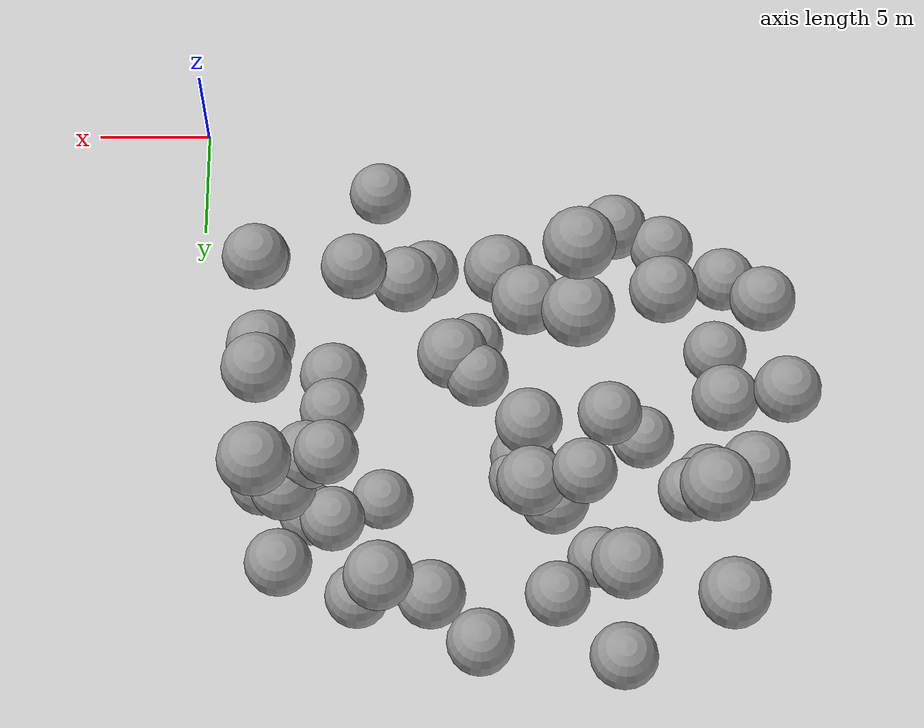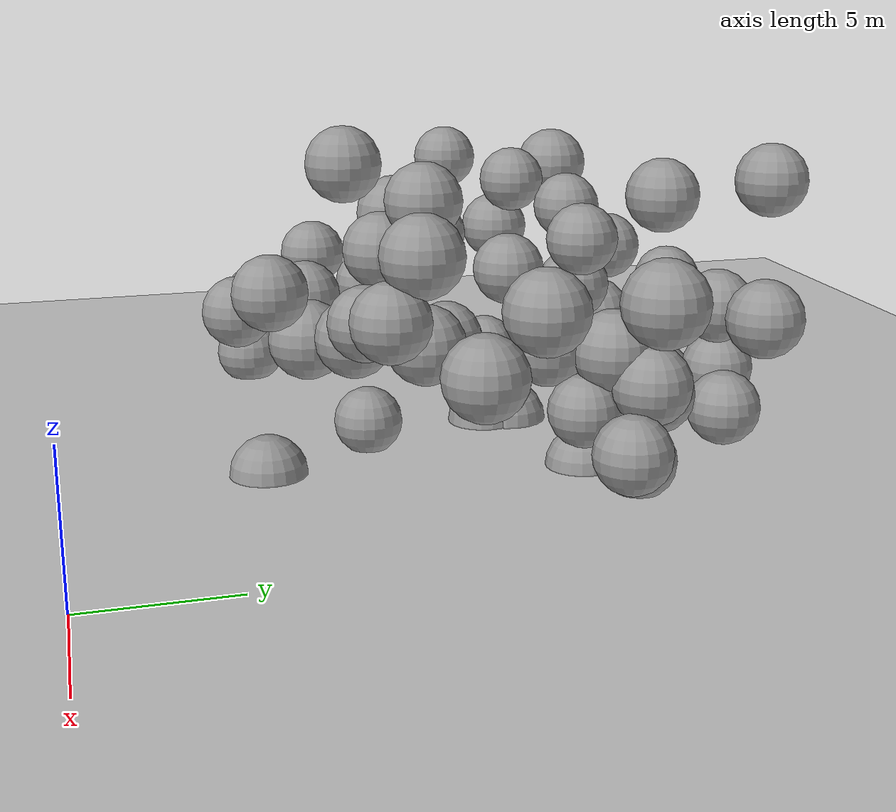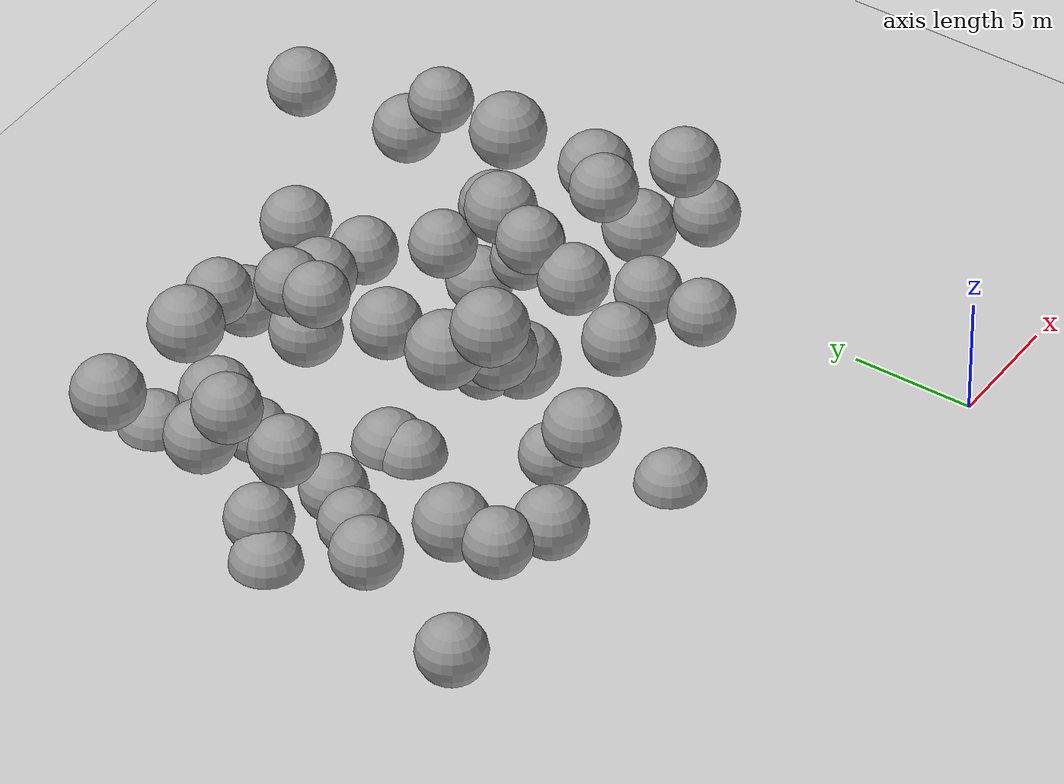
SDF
<sdf version="1.7">
 <world name="default">
  <model name="ground_plane">
   <static>1</static>
   <link name="link">
    <collision name="collision">
     <geometry><plane><normal>0 0 1</normal><size>100 100</size></plane></geometry>
     <surface>
      <contact><collide_bitmask>65535</collide_bitmask></contact>
      <friction><ode><mu>100</mu><mu2>50</mu2></ode></friction>
     </surface>
    </collision>
    <visual name="visual">
     <cast_shadows>0</cast_shadows>
     <geometry><plane><normal>0 0 1</normal><size>100 100</size></plane></geometry>
     <material>
      <script><uri>file://media/materials/scripts/gazebo.material</uri><name>Gazebo/Grey</name></script>
     </material>
    </visual>
   </link>
  </model>
  <model name="sphere_1">
   <static>1</static>
   <pose>-3 19 7 0 0 0</pose>
   <link name="link">
    <inertial>
     <mass>1400.0928152471374</mass>
     <inertia>
      <ixx>1251.9749230556774</ixx>
      <iyy>1251.9749230556774</iyy>
      <izz>1251.9749230556774</izz>
      <ixy>0</ixy>
      <ixz>0</ixz>
      <iyz>0</iyz>
     </inertia>
    </inertial>
    <collision name="collision">
     <geometry><sphere><radius>1.4951659767343175</radius></sphere></geometry>
    </collision>
    <visual name="visual">
     <geometry><sphere><radius>1.4951659767343175</radius></sphere></geometry>
     <material>
      <script><uri>file://media/materials/scripts/gazebo.material</uri><name>Gazebo/Grey</name></script>
     </material>
    </visual>
   </link>
  </model>
  <model name="sphere_4">
   <static>1</static>
   <pose>-16 11 10 0 0 0</pose>
   <link name="link">
    <inertial>
     <mass>1349.4065213395008</mass>
     <inertia>
      <ixx>1177.3500128853816</ixx>
      <iyy>1177.3500128853816</iyy>
      <izz>1177.3500128853816</izz>
      <ixy>0</ixy>
      <ixz>0</ixz>
      <iyz>0</iyz>
     </inertia>
    </inertial>
    <collision name="collision">
     <geometry><sphere><radius>1.476901047275942</radius></sphere></geometry>
    </collision>
    <visual name="visual">
     <geometry><sphere><radius>1.476901047275942</radius></sphere></geometry>
     <material>
      <script><uri>file://media/materials/scripts/gazebo.material</uri><name>Gazebo/Grey</name></script>
     </material>
    </visual>
   </link>
  </model>
  <model name="sphere_10">
   <static>1</static>
   <pose>-4 19 4 0 0 0</pose>
   <link name="link">
    <inertial>
     <mass>1096.0715494803826</mass>
     <inertia>
      <ixx>832.5284689298377</ixx>
      <iyy>832.5284689298377</iyy>
      <izz>832.5284689298377</izz>
      <ixy>0</ixy>
      <ixz>0</ixz>
      <iyz>0</iyz>
     </inertia>
    </inertial>
    <collision name="collision">
     <geometry><sphere><radius>1.3780027953613165</radius></sphere></geometry>
    </collision>
    <visual name="visual">
     <geometry><sphere><radius>1.3780027953613165</radius></sphere></geometry>
     <material>
      <script><uri>file://media/materials/scripts/gazebo.material</uri><name>Gazebo/Grey</name></script>
     </material>
    </visual>
   </link>
  </model>
  <model name="sphere_13">
   <static>1</static>
   <pose>-7 12 10 0 0 0</pose>
   <link name="link">
    <inertial>
     <mass>933.9682048326795</mass>
     <inertia>
      <ixx>637.6089502544005</ixx>
      <iyy>637.6089502544005</iyy>
      <izz>637.6089502544005</izz>
      <ixy>0</ixy>
      <ixz>0</ixz>
      <iyz>0</iyz>
     </inertia>
    </inertial>
    <collision name="collision">
     <geometry><sphere><radius>1.3064150077493173</radius></sphere></geometry>
    </collision>
    <visual name="visual">
     <geometry><sphere><radius>1.3064150077493173</radius></sphere></geometry>
     <material>
      <script><uri>file://media/materials/scripts/gazebo.material</uri><name>Gazebo/Grey</name></script>
     </material>
    </visual>
   </link>
  </model>
  <model name="sphere_24">
   <static>1</static>
   <pose>-11 13 4 0 0 0</pose>
   <link name="link">
    <inertial>
     <mass>1403.5700648880909</mass>
     <inertia>
      <ixx>1257.1615225295525</ixx>
      <iyy>1257.1615225295525</iyy>
      <izz>1257.1615225295525</izz>
      <ixy>0</ixy>
      <ixz>0</ixz>
      <iyz>0</iyz>
     </inertia>
    </inertial>
    <collision name="collision">
     <geometry><sphere><radius>1.4964027440688321</radius></sphere></geometry>
    </collision>
    <visual name="visual">
     <geometry><sphere><radius>1.4964027440688321</radius></sphere></geometry>
     <material>
      <script><uri>file://media/materials/scripts/gazebo.material</uri><name>Gazebo/Grey</name></script>
     </material>
    </visual>
   </link>
  </model>
  <model name="sphere_28">
   <static>1</static>
   <pose>-17 21 1 0 0 0</pose>
   <link name="link">
    <inertial>
     <mass>875.8497790981718</mass>
     <inertia>
      <ixx>572.8623669523987</ixx>
      <iyy>572.8623669523987</iyy>
      <izz>572.8623669523987</izz>
      <ixy>0</ixy>
      <ixz>0</ixz>
      <iyz>0</iyz>
     </inertia>
    </inertial>
    <collision name="collision">
     <geometry><sphere><radius>1.2787343703788596</radius></sphere></geometry>
    </collision>
    <visual name="visual">
     <geometry><sphere><radius>1.2787343703788596</radius></sphere></geometry>
     <material>
      <script><uri>file://media/materials/scripts/gazebo.material</uri><name>Gazebo/Grey</name></script>
     </material>
    </visual>
   </link>
  </model>
  <model name="sphere_29">
   <static>1</static>
   <pose>-15 20 5 0 0 0</pose>
   <link name="link">
    <inertial>
     <mass>1176.2609769681565</mass>
     <inertia>
      <ixx>936.4984595494084</ixx>
      <iyy>936.4984595494084</iyy>
      <izz>936.4984595494084</izz>
      <ixy>0</ixy>
      <ixz>0</ixz>
      <iyz>0</iyz>
     </inertia>
    </inertial>
    <collision name="collision">
     <geometry><sphere><radius>1.41082027832666</radius></sphere></geometry>
    </collision>
    <visual name="visual">
     <geometry><sphere><radius>1.41082027832666</radius></sphere></geometry>
     <material>
      <script><uri>file://media/materials/scripts/gazebo.material</uri><name>Gazebo/Grey</name></script>
     </material>
    </visual>
   </link>
  </model>
  <model name="sphere_34">
   <static>1</static>
   <pose>-10 24 5 0 0 0</pose>
   <link name="link">
    <inertial>
     <mass>1102.099609550624</mass>
     <inertia>
      <ixx>840.1735387916111</ixx>
      <iyy>840.1735387916111</iyy>
      <izz>840.1735387916111</izz>
      <ixy>0</ixy>
      <ixz>0</ixz>
      <iyz>0</iyz>
     </inertia>
    </inertial>
    <collision name="collision">
     <geometry><sphere><radius>1.3805243770687237</radius></sphere></geometry>
    </collision>
    <visual name="visual">
     <geometry><sphere><radius>1.3805243770687237</radius></sphere></geometry>
     <material>
      <script><uri>file://media/materials/scripts/gazebo.material</uri><name>Gazebo/Grey</name></script>
     </material>
    </visual>
   </link>
  </model>
  <model name="sphere_43">
   <static>1</static>
   <pose>-19 16 2 0 0 0</pose>
   <link name="link">
    <inertial>
     <mass>977.1636527611763</mass>
     <inertia>
      <ixx>687.5111706316754</ixx>
      <iyy>687.5111706316754</iyy>
      <izz>687.5111706316754</izz>
      <ixy>0</ixy>
      <ixz>0</ixz>
      <iyz>0</iyz>
     </inertia>
    </inertial>
    <collision name="collision">
     <geometry><sphere><radius>1.3262525491756008</radius></sphere></geometry>
    </collision>
    <visual name="visual">
     <geometry><sphere><radius>1.3262525491756008</radius></sphere></geometry>
     <material>
      <script><uri>file://media/materials/scripts/gazebo.material</uri><name>Gazebo/Grey</name></script>
     </material>
    </visual>
   </link>
  </model>
  <model name="sphere_45">
   <static>1</static>
   <pose>-18 25 0 0 0 0</pose>
   <link name="link">
    <inertial>
     <mass>1234.6660267116351</mass>
     <inertia>
      <ixx>1015.2743527480757</ixx>
      <iyy>1015.2743527480757</iyy>
      <izz>1015.2743527480757</izz>
      <ixy>0</ixy>
      <ixz>0</ixz>
      <iyz>0</iyz>
     </inertia>
    </inertial>
    <collision name="collision">
     <geometry><sphere><radius>1.433794674483131</radius></sphere></geometry>
    </collision>
    <visual name="visual">
     <geometry><sphere><radius>1.433794674483131</radius></sphere></geometry>
     <material>
      <script><uri>file://media/materials/scripts/gazebo.material</uri><name>Gazebo/Grey</name></script>
     </material>
    </visual>
   </link>
  </model>
  <model name="sphere_49">
   <static>1</static>
   <pose>-12 11 1 0 0 0</pose>
   <link name="link">
    <inertial>
     <mass>842.2552281410283</mass>
     <inertia>
      <ixx>536.7109356137308</ixx>
      <iyy>536.7109356137308</iyy>
      <izz>536.7109356137308</izz>
      <ixy>0</ixy>
      <ixz>0</ixz>
      <iyz>0</iyz>
     </inertia>
    </inertial>
    <collision name="collision">
     <geometry><sphere><radius>1.2621714976683962</radius></sphere></geometry>
    </collision>
    <visual name="visual">
     <geometry><sphere><radius>1.2621714976683962</radius></sphere></geometry>
     <material>
      <script><uri>file://media/materials/scripts/gazebo.material</uri><name>Gazebo/Grey</name></script>
     </material>
    </visual>
   </link>
  </model>
  <model name="sphere_56">
   <static>1</static>
   <pose>-5 18 5 0 0 0</pose>
   <link name="link">
    <inertial>
     <mass>1192.8358083814114</mass>
     <inertia>
      <ixx>958.5954539539514</ixx>
      <iyy>958.5954539539514</iyy>
      <izz>958.5954539539514</izz>
      <ixy>0</ixy>
      <ixz>0</ixz>
      <iyz>0</iyz>
     </inertia>
    </inertial>
    <collision name="collision">
     <geometry><sphere><radius>1.417416071975112</radius></sphere></geometry>
    </collision>
    <visual name="visual">
     <geometry><sphere><radius>1.417416071975112</radius></sphere></geometry>
     <material>
      <script><uri>file://media/materials/scripts/gazebo.material</uri><name>Gazebo/Grey</name></script>
     </material>
    </visual>
   </link>
  </model>
  <model name="sphere_59">
   <static>1</static>
   <pose>-21 21 9 0 0 0</pose>
   <link name="link">
    <inertial>
     <mass>1248.358782074386</mass>
     <inertia>
      <ixx>1034.1097190260136</ixx>
      <iyy>1034.1097190260136</iyy>
      <izz>1034.1097190260136</izz>
      <ixy>0</ixy>
      <ixz>0</ixz>
      <iyz>0</iyz>
     </inertia>
    </inertial>
    <collision name="collision">
     <geometry><sphere><radius>1.4390755807805837</radius></sphere></geometry>
    </collision>
    <visual name="visual">
     <geometry><sphere><radius>1.4390755807805837</radius></sphere></geometry>
     <material>
      <script><uri>file://media/materials/scripts/gazebo.material</uri><name>Gazebo/Grey</name></script>
     </material>
    </visual>
   </link>
  </model>
  <model name="sphere_62">
   <static>1</static>
   <pose>-22 17 0 0 0 0</pose>
   <link name="link">
    <inertial>
     <mass>1196.8095027380812</mass>
     <inertia>
      <ixx>963.923644108915</ixx>
      <iyy>963.923644108915</iyy>
      <izz>963.923644108915</izz>
      <ixy>0</ixy>
      <ixz>0</ixz>
      <iyz>0</iyz>
     </inertia>
    </inertial>
    <collision name="collision">
     <geometry><sphere><radius>1.4189882736631632</radius></sphere></geometry>
    </collision>
    <visual name="visual">
     <geometry><sphere><radius>1.4189882736631632</radius></sphere></geometry>
     <material>
      <script><uri>file://media/materials/scripts/gazebo.material</uri><name>Gazebo/Grey</name></script>
     </material>
    </visual>
   </link>
  </model>
  <model name="sphere_64">
   <static>1</static>
   <pose>-20 10 4 0 0 0</pose>
   <link name="link">
    <inertial>
     <mass>1311.9166801236224</mass>
     <inertia>
      <ixx>1123.3403052052124</ixx>
      <iyy>1123.3403052052124</iyy>
      <izz>1123.3403052052124</izz>
      <ixy>0</ixy>
      <ixz>0</ixz>
      <iyz>0</iyz>
     </inertia>
    </inertial>
    <collision name="collision">
     <geometry><sphere><radius>1.4630950742328759</radius></sphere></geometry>
    </collision>
    <visual name="visual">
     <geometry><sphere><radius>1.4630950742328759</radius></sphere></geometry>
     <material>
      <script><uri>file://media/materials/scripts/gazebo.material</uri><name>Gazebo/Grey</name></script>
     </material>
    </visual>
   </link>
  </model>
  <model name="sphere_69">
   <static>1</static>
   <pose>-24 11 5 0 0 0</pose>
   <link name="link">
    <inertial>
     <mass>1088.9676170648245</mass>
     <inertia>
      <ixx>823.5548462182198</ixx>
      <iyy>823.5548462182198</iyy>
      <izz>823.5548462182198</izz>
      <ixy>0</ixy>
      <ixz>0</ixz>
      <iyz>0</iyz>
     </inertia>
    </inertial>
    <collision name="collision">
     <geometry><sphere><radius>1.375019272341317</radius></sphere></geometry>
    </collision>
    <visual name="visual">
     <geometry><sphere><radius>1.375019272341317</radius></sphere></geometry>
     <material>
      <script><uri>file://media/materials/scripts/gazebo.material</uri><name>Gazebo/Grey</name></script>
     </material>
    </visual>
   </link>
  </model>
  <model name="sphere_75">
   <static>1</static>
   <pose>-7 23 2 0 0 0</pose>
   <link name="link">
    <inertial>
     <mass>1005.7223399440119</mass>
     <inertia>
      <ixx>721.3251593656892</ixx>
      <iyy>721.3251593656892</iyy>
      <izz>721.3251593656892</izz>
      <ixy>0</ixy>
      <ixz>0</ixz>
      <iyz>0</iyz>
     </inertia>
    </inertial>
    <collision name="collision">
     <geometry><sphere><radius>1.3390490815496965</radius></sphere></geometry>
    </collision>
    <visual name="visual">
     <geometry><sphere><radius>1.3390490815496965</radius></sphere></geometry>
     <material>
      <script><uri>file://media/materials/scripts/gazebo.material</uri><name>Gazebo/Grey</name></script>
     </material>
    </visual>
   </link>
  </model>
  <model name="sphere_93">
   <static>1</static>
   <pose>-5 19 1 0 0 0</pose>
   <link name="link">
    <inertial>
     <mass>990.059383016261</mass>
     <inertia>
      <ixx>702.6995226506081</ixx>
      <iyy>702.6995226506081</iyy>
      <izz>702.6995226506081</izz>
      <ixy>0</ixy>
      <ixz>0</ixz>
      <iyz>0</iyz>
     </inertia>
    </inertial>
    <collision name="collision">
     <geometry><sphere><radius>1.332061301618153</radius></sphere></geometry>
    </collision>
    <visual name="visual">
     <geometry><sphere><radius>1.332061301618153</radius></sphere></geometry>
     <material>
      <script><uri>file://media/materials/scripts/gazebo.material</uri><name>Gazebo/Grey</name></script>
     </material>
    </visual>
   </link>
  </model>
  <model name="sphere_96">
   <static>1</static>
   <pose>-3 10 7 0 0 0</pose>
   <link name="link">
    <inertial>
     <mass>908.8602062394996</mass>
     <inertia>
      <ixx>609.2975045586089</ixx>
      <iyy>609.2975045586089</iyy>
      <izz>609.2975045586089</izz>
      <ixy>0</ixy>
      <ixz>0</ixz>
      <iyz>0</iyz>
     </inertia>
    </inertial>
    <collision name="collision">
     <geometry><sphere><radius>1.294601660609652</radius></sphere></geometry>
    </collision>
    <visual name="visual">
     <geometry><sphere><radius>1.294601660609652</radius></sphere></geometry>
     <material>
      <script><uri>file://media/materials/scripts/gazebo.material</uri><name>Gazebo/Grey</name></script>
     </material>
    </visual>
   </link>
  </model>
  <model name="sphere_102">
   <static>1</static>
   <pose>-5 17 3 0 0 0</pose>
   <link name="link">
    <inertial>
     <mass>828.4078441390982</mass>
     <inertia>
      <ixx>522.0850484970496</ixx>
      <iyy>522.0850484970496</iyy>
      <izz>522.0850484970496</izz>
      <ixy>0</ixy>
      <ixz>0</ixz>
      <iyz>0</iyz>
     </inertia>
    </inertial>
    <collision name="collision">
     <geometry><sphere><radius>1.2552161867036657</radius></sphere></geometry>
    </collision>
    <visual name="visual">
     <geometry><sphere><radius>1.2552161867036657</radius></sphere></geometry>
     <material>
      <script><uri>file://media/materials/scripts/gazebo.material</uri><name>Gazebo/Grey</name></script>
     </material>
    </visual>
   </link>
  </model>
  <model name="sphere_105">
   <static>1</static>
   <pose>-15 24 5 0 0 0</pose>
   <link name="link">
    <inertial>
     <mass>914.0602566100126</mass>
     <inertia>
      <ixx>615.1187454391396</ixx>
      <iyy>615.1187454391396</iyy>
      <izz>615.1187454391396</izz>
      <ixy>0</ixy>
      <ixz>0</ixz>
      <iyz>0</iyz>
     </inertia>
    </inertial>
    <collision name="collision">
     <geometry><sphere><radius>1.2970659909886528</radius></sphere></geometry>
    </collision>
    <visual name="visual">
     <geometry><sphere><radius>1.2970659909886528</radius></sphere></geometry>
     <material>
      <script><uri>file://media/materials/scripts/gazebo.material</uri><name>Gazebo/Grey</name></script>
     </material>
    </visual>
   </link>
  </model>
  <model name="sphere_107">
   <static>1</static>
   <pose>-12 14 4 0 0 0</pose>
   <link name="link">
    <inertial>
     <mass>981.5876715857709</mass>
     <inertia>
      <ixx>692.706735329514</ixx>
      <iyy>692.706735329514</iyy>
      <izz>692.706735329514</izz>
      <ixy>0</ixy>
      <ixz>0</ixz>
      <iyz>0</iyz>
     </inertia>
    </inertial>
    <collision name="collision">
     <geometry><sphere><radius>1.32825103181715</radius></sphere></geometry>
    </collision>
    <visual name="visual">
     <geometry><sphere><radius>1.32825103181715</radius></sphere></geometry>
     <material>
      <script><uri>file://media/materials/scripts/gazebo.material</uri><name>Gazebo/Grey</name></script>
     </material>
    </visual>
   </link>
  </model>
  <model name="sphere_111">
   <static>1</static>
   <pose>-18 22 3 0 0 0</pose>
   <link name="link">
    <inertial>
     <mass>1332.346055704261</mass>
     <inertia>
      <ixx>1152.6461024165897</ixx>
      <iyy>1152.6461024165897</iyy>
      <izz>1152.6461024165897</izz>
      <ixy>0</ixy>
      <ixz>0</ixz>
      <iyz>0</iyz>
     </inertia>
    </inertial>
    <collision name="collision">
     <geometry><sphere><radius>1.4706505073048362</radius></sphere></geometry>
    </collision>
    <visual name="visual">
     <geometry><sphere><radius>1.4706505073048362</radius></sphere></geometry>
     <material>
      <script><uri>file://media/materials/scripts/gazebo.material</uri><name>Gazebo/Grey</name></script>
     </material>
    </visual>
   </link>
  </model>
  <model name="sphere_114">
   <static>1</static>
   <pose>-22 16 6 0 0 0</pose>
   <link name="link">
    <inertial>
     <mass>1057.7223528850982</mass>
     <inertia>
      <ixx>784.5495707866361</ixx>
      <iyy>784.5495707866361</iyy>
      <izz>784.5495707866361</izz>
      <ixy>0</ixy>
      <ixz>0</ixz>
      <iyz>0</iyz>
     </inertia>
    </inertial>
    <collision name="collision">
     <geometry><sphere><radius>1.361740511113767</radius></sphere></geometry>
    </collision>
    <visual name="visual">
     <geometry><sphere><radius>1.361740511113767</radius></sphere></geometry>
     <material>
      <script><uri>file://media/materials/scripts/gazebo.material</uri><name>Gazebo/Grey</name></script>
     </material>
    </visual>
   </link>
  </model>
  <model name="sphere_120">
   <static>1</static>
   <pose>-13 9 4 0 0 0</pose>
   <link name="link">
    <inertial>
     <mass>1366.3026936058411</mass>
     <inertia>
      <ixx>1202.022118817</ixx>
      <iyy>1202.022118817</iyy>
      <izz>1202.022118817</izz>
      <ixy>0</ixy>
      <ixz>0</ixz>
      <iyz>0</iyz>
     </inertia>
    </inertial>
    <collision name="collision">
     <geometry><sphere><radius>1.4830396821732423</radius></sphere></geometry>
    </collision>
    <visual name="visual">
     <geometry><sphere><radius>1.4830396821732423</radius></sphere></geometry>
     <material>
      <script><uri>file://media/materials/scripts/gazebo.material</uri><name>Gazebo/Grey</name></script>
     </material>
    </visual>
   </link>
  </model>
  <model name="sphere_125">
   <static>1</static>
   <pose>-3 11 9 0 0 0</pose>
   <link name="link">
    <inertial>
     <mass>1021.7164782041723</mass>
     <inertia>
      <ixx>740.5452170808113</ixx>
      <iyy>740.5452170808113</iyy>
      <izz>740.5452170808113</izz>
      <ixy>0</ixy>
      <ixz>0</ixz>
      <iyz>0</iyz>
     </inertia>
    </inertial>
    <collision name="collision">
     <geometry><sphere><radius>1.3461101412846206</radius></sphere></geometry>
    </collision>
    <visual name="visual">
     <geometry><sphere><radius>1.3461101412846206</radius></sphere></geometry>
     <material>
      <script><uri>file://media/materials/scripts/gazebo.material</uri><name>Gazebo/Grey</name></script>
     </material>
    </visual>
   </link>
  </model>
  <model name="sphere_128">
   <static>1</static>
   <pose>-24 17 9 0 0 0</pose>
   <link name="link">
    <inertial>
     <mass>972.9096737732464</mass>
     <inertia>
      <ixx>682.5300671660056</ixx>
      <iyy>682.5300671660056</iyy>
      <izz>682.5300671660056</izz>
      <ixy>0</ixy>
      <ixz>0</ixz>
      <iyz>0</iyz>
     </inertia>
    </inertial>
    <collision name="collision">
     <geometry><sphere><radius>1.3243251826979423</radius></sphere></geometry>
    </collision>
    <visual name="visual">
     <geometry><sphere><radius>1.3243251826979423</radius></sphere></geometry>
     <material>
      <script><uri>file://media/materials/scripts/gazebo.material</uri><name>Gazebo/Grey</name></script>
     </material>
    </visual>
   </link>
  </model>
  <model name="sphere_133">
   <static>1</static>
   <pose>-10 7 0 0 0 0</pose>
   <link name="link">
    <inertial>
     <mass>1122.920650011708</mass>
     <inertia>
      <ixx>866.7942714325591</ixx>
      <iyy>866.7942714325591</iyy>
      <izz>866.7942714325591</izz>
      <ixy>0</ixy>
      <ixz>0</ixz>
      <iyz>0</iyz>
     </inertia>
    </inertial>
    <collision name="collision">
     <geometry><sphere><radius>1.3891638920821245</radius></sphere></geometry>
    </collision>
    <visual name="visual">
     <geometry><sphere><radius>1.3891638920821245</radius></sphere></geometry>
     <material>
      <script><uri>file://media/materials/scripts/gazebo.material</uri><name>Gazebo/Grey</name></script>
     </material>
    </visual>
   </link>
  </model>
  <model name="sphere_140">
   <static>1</static>
   <pose>-22 13 4 0 0 0</pose>
   <link name="link">
    <inertial>
     <mass>963.5398982716888</mass>
     <inertia>
      <ixx>671.6099003093913</ixx>
      <iyy>671.6099003093913</iyy>
      <izz>671.6099003093913</izz>
      <ixy>0</ixy>
      <ixz>0</ixz>
      <iyz>0</iyz>
     </inertia>
    </inertial>
    <collision name="collision">
     <geometry><sphere><radius>1.3200600801286921</radius></sphere></geometry>
    </collision>
    <visual name="visual">
     <geometry><sphere><radius>1.3200600801286921</radius></sphere></geometry>
     <material>
      <script><uri>file://media/materials/scripts/gazebo.material</uri><name>Gazebo/Grey</name></script>
     </material>
    </visual>
   </link>
  </model>
  <model name="sphere_142">
   <static>1</static>
   <pose>-9 10 5 0 0 0</pose>
   <link name="link">
    <inertial>
     <mass>1143.9899231169666</mass>
     <inertia>
      <ixx>894.0694389203436</ixx>
      <iyy>894.0694389203436</iyy>
      <izz>894.0694389203436</izz>
      <ixy>0</ixy>
      <ixz>0</ixz>
      <iyz>0</iyz>
     </inertia>
    </inertial>
    <collision name="collision">
     <geometry><sphere><radius>1.3977983706156873</radius></sphere></geometry>
    </collision>
    <visual name="visual">
     <geometry><sphere><radius>1.3977983706156873</radius></sphere></geometry>
     <material>
      <script><uri>file://media/materials/scripts/gazebo.material</uri><name>Gazebo/Grey</name></script>
     </material>
    </visual>
   </link>
  </model>
  <model name="sphere_143">
   <static>1</static>
   <pose>-3 18 2 0 0 0</pose>
   <link name="link">
    <inertial>
     <mass>1060.966759733693</mass>
     <inertia>
      <ixx>788.5644865021967</ixx>
      <iyy>788.5644865021967</iyy>
      <izz>788.5644865021967</izz>
      <ixy>0</ixy>
      <ixz>0</ixz>
      <iyz>0</iyz>
     </inertia>
    </inertial>
    <collision name="collision">
     <geometry><sphere><radius>1.3631314024889842</radius></sphere></geometry>
    </collision>
    <visual name="visual">
     <geometry><sphere><radius>1.3631314024889842</radius></sphere></geometry>
     <material>
      <script><uri>file://media/materials/scripts/gazebo.material</uri><name>Gazebo/Grey</name></script>
     </material>
    </visual>
   </link>
  </model>
  <model name="sphere_145">
   <static>1</static>
   <pose>-18 7 4 0 0 0</pose>
   <link name="link">
    <inertial>
     <mass>1169.1200907315683</mass>
     <inertia>
      <ixx>927.0421013870367</ixx>
      <iyy>927.0421013870367</iyy>
      <izz>927.0421013870367</izz>
      <ixy>0</ixy>
      <ixz>0</ixz>
      <iyz>0</iyz>
     </inertia>
    </inertial>
    <collision name="collision">
     <geometry><sphere><radius>1.4079595291013638</radius></sphere></geometry>
    </collision>
    <visual name="visual">
     <geometry><sphere><radius>1.4079595291013638</radius></sphere></geometry>
     <material>
      <script><uri>file://media/materials/scripts/gazebo.material</uri><name>Gazebo/Grey</name></script>
     </material>
    </visual>
   </link>
  </model>
  <model name="sphere_152">
   <static>1</static>
   <pose>-3 13 5 0 0 0</pose>
   <link name="link">
    <inertial>
     <mass>1267.4277361976697</mass>
     <inertia>
      <ixx>1060.5706311839426</ixx>
      <iyy>1060.5706311839426</iyy>
      <izz>1060.5706311839426</izz>
      <ixy>0</ixy>
      <ixz>0</ixz>
      <iyz>0</iyz>
     </inertia>
    </inertial>
    <collision name="collision">
     <geometry><sphere><radius>1.4463659833484739</radius></sphere></geometry>
    </collision>
    <visual name="visual">
     <geometry><sphere><radius>1.4463659833484739</radius></sphere></geometry>
     <material>
      <script><uri>file://media/materials/scripts/gazebo.material</uri><name>Gazebo/Grey</name></script>
     </material>
    </visual>
   </link>
  </model>
  <model name="sphere_155">
   <static>1</static>
   <pose>-7 10 6 0 0 0</pose>
   <link name="link">
    <inertial>
     <mass>915.9545676234924</mass>
     <inertia>
      <ixx>617.2448470172766</ixx>
      <iyy>617.2448470172766</iyy>
      <izz>617.2448470172766</izz>
      <ixy>0</ixy>
      <ixz>0</ixz>
      <iyz>0</iyz>
     </inertia>
    </inertial>
    <collision name="collision">
     <geometry><sphere><radius>1.2979613918431816</radius></sphere></geometry>
    </collision>
    <visual name="visual">
     <geometry><sphere><radius>1.2979613918431816</radius></sphere></geometry>
     <material>
      <script><uri>file://media/materials/scripts/gazebo.material</uri><name>Gazebo/Grey</name></script>
     </material>
    </visual>
   </link>
  </model>
  <model name="sphere_170">
   <static>1</static>
   <pose>-23 19 6 0 0 0</pose>
   <link name="link">
    <inertial>
     <mass>1171.604867644509</mass>
     <inertia>
      <ixx>930.3282256345469</ixx>
      <iyy>930.3282256345469</iyy>
      <izz>930.3282256345469</izz>
      <ixy>0</ixy>
      <ixz>0</ixz>
      <iyz>0</iyz>
     </inertia>
    </inertial>
    <collision name="collision">
     <geometry><sphere><radius>1.4089562872065866</radius></sphere></geometry>
    </collision>
    <visual name="visual">
     <geometry><sphere><radius>1.4089562872065866</radius></sphere></geometry>
     <material>
      <script><uri>file://media/materials/scripts/gazebo.material</uri><name>Gazebo/Grey</name></script>
     </material>
    </visual>
   </link>
  </model>
  <model name="sphere_182">
   <static>1</static>
   <pose>-8 25 10 0 0 0</pose>
   <link name="link">
    <inertial>
     <mass>968.2582684491257</mass>
     <inertia>
      <ixx>677.100200426205</ixx>
      <iyy>677.100200426205</iyy>
      <izz>677.100200426205</izz>
      <ixy>0</ixy>
      <ixz>0</ixz>
      <iyz>0</iyz>
     </inertia>
    </inertial>
    <collision name="collision">
     <geometry><sphere><radius>1.3222113118651322</radius></sphere></geometry>
    </collision>
    <visual name="visual">
     <geometry><sphere><radius>1.3222113118651322</radius></sphere></geometry>
     <material>
      <script><uri>file://media/materials/scripts/gazebo.material</uri><name>Gazebo/Grey</name></script>
     </material>
    </visual>
   </link>
  </model>
  <model name="sphere_192">
   <static>1</static>
   <pose>-8 7 7 0 0 0</pose>
   <link name="link">
    <inertial>
     <mass>874.8124890708608</mass>
     <inertia>
      <ixx>571.7320555322173</ixx>
      <iyy>571.7320555322173</iyy>
      <izz>571.7320555322173</izz>
      <ixy>0</ixy>
      <ixz>0</ixz>
      <iyz>0</iyz>
     </inertia>
    </inertial>
    <collision name="collision">
     <geometry><sphere><radius>1.278229358970554</radius></sphere></geometry>
    </collision>
    <visual name="visual">
     <geometry><sphere><radius>1.278229358970554</radius></sphere></geometry>
     <material>
      <script><uri>file://media/materials/scripts/gazebo.material</uri><name>Gazebo/Grey</name></script>
     </material>
    </visual>
   </link>
  </model>
  <model name="sphere_201">
   <static>1</static>
   <pose>-17 18 9 0 0 0</pose>
   <link name="link">
    <inertial>
     <mass>831.0432167956259</mass>
     <inertia>
      <ixx>524.8561214879281</ixx>
      <iyy>524.8561214879281</iyy>
      <izz>524.8561214879281</izz>
      <ixy>0</ixy>
      <ixz>0</ixz>
      <iyz>0</iyz>
     </inertia>
    </inertial>
    <collision name="collision">
     <geometry><sphere><radius>1.2565458299897054</radius></sphere></geometry>
    </collision>
    <visual name="visual">
     <geometry><sphere><radius>1.2565458299897054</radius></sphere></geometry>
     <material>
      <script><uri>file://media/materials/scripts/gazebo.material</uri><name>Gazebo/Grey</name></script>
     </material>
    </visual>
   </link>
  </model>
  <model name="sphere_210">
   <static>1</static>
   <pose>-16 13 8 0 0 0</pose>
   <link name="link">
    <inertial>
     <mass>1402.7379176738737</mass>
     <inertia>
      <ixx>1255.9195269381648</ixx>
      <iyy>1255.9195269381648</iyy>
      <izz>1255.9195269381648</izz>
      <ixy>0</ixy>
      <ixz>0</ixz>
      <iyz>0</iyz>
     </inertia>
    </inertial>
    <collision name="collision">
     <geometry><sphere><radius>1.4961069570191297</radius></sphere></geometry>
    </collision>
    <visual name="visual">
     <geometry><sphere><radius>1.4961069570191297</radius></sphere></geometry>
     <material>
      <script><uri>file://media/materials/scripts/gazebo.material</uri><name>Gazebo/Grey</name></script>
     </material>
    </visual>
   </link>
  </model>
  <model name="sphere_233">
   <static>1</static>
   <pose>-14 16 0 0 0 0</pose>
   <link name="link">
    <inertial>
     <mass>1107.157307937608</mass>
     <inertia>
      <ixx>846.6094986870685</ixx>
      <iyy>846.6094986870685</iyy>
      <izz>846.6094986870685</izz>
      <ixy>0</ixy>
      <ixz>0</ixz>
      <iyz>0</iyz>
     </inertia>
    </inertial>
    <collision name="collision">
     <geometry><sphere><radius>1.382632965107816</radius></sphere></geometry>
    </collision>
    <visual name="visual">
     <geometry><sphere><radius>1.382632965107816</radius></sphere></geometry>
     <material>
      <script><uri>file://media/materials/scripts/gazebo.material</uri><name>Gazebo/Grey</name></script>
     </material>
    </visual>
   </link>
  </model>
  <model name="sphere_270">
   <static>1</static>
   <pose>-12 25 2 0 0 0</pose>
   <link name="link">
    <inertial>
     <mass>1116.1031862120178</mass>
     <inertia>
      <ixx>858.0412463348048</ixx>
      <iyy>858.0412463348048</iyy>
      <izz>858.0412463348048</izz>
      <ixy>0</ixy>
      <ixz>0</ixz>
      <iyz>0</iyz>
     </inertia>
    </inertial>
    <collision name="collision">
     <geometry><sphere><radius>1.3863468912143069</radius></sphere></geometry>
    </collision>
    <visual name="visual">
     <geometry><sphere><radius>1.3863468912143069</radius></sphere></geometry>
     <material>
      <script><uri>file://media/materials/scripts/gazebo.material</uri><name>Gazebo/Grey</name></script>
     </material>
    </visual>
   </link>
  </model>
  <model name="sphere_273">
   <static>1</static>
   <pose>-3 15 7 0 0 0</pose>
   <link name="link">
    <inertial>
     <mass>1247.2118453994276</mass>
     <inertia>
      <ixx>1032.52671379011</ixx>
      <iyy>1032.52671379011</iyy>
      <izz>1032.52671379011</izz>
      <ixy>0</ixy>
      <ixz>0</ixz>
      <iyz>0</iyz>
     </inertia>
    </inertial>
    <collision name="collision">
     <geometry><sphere><radius>1.4386347261371424</radius></sphere></geometry>
    </collision>
    <visual name="visual">
     <geometry><sphere><radius>1.4386347261371424</radius></sphere></geometry>
     <material>
      <script><uri>file://media/materials/scripts/gazebo.material</uri><name>Gazebo/Grey</name></script>
     </material>
    </visual>
   </link>
  </model>
  <model name="sphere_290">
   <static>1</static>
   <pose>-14 12 7 0 0 0</pose>
   <link name="link">
    <inertial>
     <mass>1305.2496376701292</mass>
     <inertia>
      <ixx>1113.841907815693</ixx>
      <iyy>1113.841907815693</iyy>
      <izz>1113.841907815693</izz>
      <ixy>0</ixy>
      <ixz>0</ixz>
      <iyz>0</iyz>
     </inertia>
    </inertial>
    <collision name="collision">
     <geometry><sphere><radius>1.4606124247906165</radius></sphere></geometry>
    </collision>
    <visual name="visual">
     <geometry><sphere><radius>1.4606124247906165</radius></sphere></geometry>
     <material>
      <script><uri>file://media/materials/scripts/gazebo.material</uri><name>Gazebo/Grey</name></script>
     </material>
    </visual>
   </link>
  </model>
  <model name="sphere_307">
   <static>1</static>
   <pose>-6 14 4 0 0 0</pose>
   <link name="link">
    <inertial>
     <mass>1137.4075773747577</mass>
     <inertia>
      <ixx>885.5119922462529</ixx>
      <iyy>885.5119922462529</iyy>
      <izz>885.5119922462529</izz>
      <ixy>0</ixy>
      <ixz>0</ixz>
      <iyz>0</iyz>
     </inertia>
    </inertial>
    <collision name="collision">
     <geometry><sphere><radius>1.3951123051615533</radius></sphere></geometry>
    </collision>
    <visual name="visual">
     <geometry><sphere><radius>1.3951123051615533</radius></sphere></geometry>
     <material>
      <script><uri>file://media/materials/scripts/gazebo.material</uri><name>Gazebo/Grey</name></script>
     </material>
    </visual>
   </link>
  </model>
  <model name="sphere_308">
   <static>1</static>
   <pose>-22 24 5 0 0 0</pose>
   <link name="link">
    <inertial>
     <mass>1248.863165166649</mass>
     <inertia>
      <ixx>1034.8061770595934</ixx>
      <iyy>1034.8061770595934</iyy>
      <izz>1034.8061770595934</izz>
      <ixy>0</ixy>
      <ixz>0</ixz>
      <iyz>0</iyz>
     </inertia>
    </inertial>
    <collision name="collision">
     <geometry><sphere><radius>1.4392693679267337</radius></sphere></geometry>
    </collision>
    <visual name="visual">
     <geometry><sphere><radius>1.4392693679267337</radius></sphere></geometry>
     <material>
      <script><uri>file://media/materials/scripts/gazebo.material</uri><name>Gazebo/Grey</name></script>
     </material>
    </visual>
   </link>
  </model>
  <model name="sphere_313">
   <static>1</static>
   <pose>-6 20 10 0 0 0</pose>
   <link name="link">
    <inertial>
     <mass>821.0135854505609</mass>
     <inertia>
      <ixx>514.3414098883126</ixx>
      <iyy>514.3414098883126</iyy>
      <izz>514.3414098883126</izz>
      <ixy>0</ixy>
      <ixz>0</ixz>
      <iyz>0</iyz>
     </inertia>
    </inertial>
    <collision name="collision">
     <geometry><sphere><radius>1.2514703885253875</radius></sphere></geometry>
    </collision>
    <visual name="visual">
     <geometry><sphere><radius>1.2514703885253875</radius></sphere></geometry>
     <material>
      <script><uri>file://media/materials/scripts/gazebo.material</uri><name>Gazebo/Grey</name></script>
     </material>
    </visual>
   </link>
  </model>
  <model name="sphere_325">
   <static>1</static>
   <pose>-20 8 4 0 0 0</pose>
   <link name="link">
    <inertial>
     <mass>1042.684765220028</mass>
     <inertia>
      <ixx>766.0479685616605</ixx>
      <iyy>766.0479685616605</iyy>
      <izz>766.0479685616605</izz>
      <ixy>0</ixy>
      <ixz>0</ixz>
      <iyz>0</iyz>
     </inertia>
    </inertial>
    <collision name="collision">
     <geometry><sphere><radius>1.3552564189444305</radius></sphere></geometry>
    </collision>
    <visual name="visual">
     <geometry><sphere><radius>1.3552564189444305</radius></sphere></geometry>
     <material>
      <script><uri>file://media/materials/scripts/gazebo.material</uri><name>Gazebo/Grey</name></script>
     </material>
    </visual>
   </link>
  </model>
  <model name="sphere_326">
   <static>1</static>
   <pose>-6 16 5 0 0 0</pose>
   <link name="link">
    <inertial>
     <mass>952.6625471561873</mass>
     <inertia>
      <ixx>659.0212290185493</ixx>
      <iyy>659.0212290185493</iyy>
      <izz>659.0212290185493</izz>
      <ixy>0</ixy>
      <ixz>0</ixz>
      <iyz>0</iyz>
     </inertia>
    </inertial>
    <collision name="collision">
     <geometry><sphere><radius>1.3150739070252806</radius></sphere></geometry>
    </collision>
    <visual name="visual">
     <geometry><sphere><radius>1.3150739070252806</radius></sphere></geometry>
     <material>
      <script><uri>file://media/materials/scripts/gazebo.material</uri><name>Gazebo/Grey</name></script>
     </material>
    </visual>
   </link>
  </model>
  <model name="sphere_331">
   <static>1</static>
   <pose>-6 20 3 0 0 0</pose>
   <link name="link">
    <inertial>
     <mass>1002.6101714969018</mass>
     <inertia>
      <ixx>717.6088105203385</ixx>
      <iyy>717.6088105203385</iyy>
      <izz>717.6088105203385</izz>
      <ixy>0</ixy>
      <ixz>0</ixz>
      <iyz>0</iyz>
     </inertia>
    </inertial>
    <collision name="collision">
     <geometry><sphere><radius>1.3376664427226697</radius></sphere></geometry>
    </collision>
    <visual name="visual">
     <geometry><sphere><radius>1.3376664427226697</radius></sphere></geometry>
     <material>
      <script><uri>file://media/materials/scripts/gazebo.material</uri><name>Gazebo/Grey</name></script>
     </material>
    </visual>
   </link>
  </model>
  <model name="sphere_333">
   <static>1</static>
   <pose>-8 18 0 0 0 0</pose>
   <link name="link">
    <inertial>
     <mass>965.7099364205341</mass>
     <inertia>
      <ixx>674.1327381347012</ixx>
      <iyy>674.1327381347012</iyy>
      <izz>674.1327381347012</izz>
      <ixy>0</ixy>
      <ixz>0</ixz>
      <iyz>0</iyz>
     </inertia>
    </inertial>
    <collision name="collision">
     <geometry><sphere><radius>1.3210503290134492</radius></sphere></geometry>
    </collision>
    <visual name="visual">
     <geometry><sphere><radius>1.3210503290134492</radius></sphere></geometry>
     <material>
      <script><uri>file://media/materials/scripts/gazebo.material</uri><name>Gazebo/Grey</name></script>
     </material>
    </visual>
   </link>
  </model>
  <model name="sphere_335">
   <static>1</static>
   <pose>-23 8 1 0 0 0</pose>
   <link name="link">
    <inertial>
     <mass>1118.1347463250843</mass>
     <inertia>
      <ixx>860.6458737997389</ixx>
      <iyy>860.6458737997389</iyy>
      <izz>860.6458737997389</izz>
      <ixy>0</ixy>
      <ixz>0</ixz>
      <iyz>0</iyz>
     </inertia>
    </inertial>
    <collision name="collision">
     <geometry><sphere><radius>1.3871875362822015</radius></sphere></geometry>
    </collision>
    <visual name="visual">
     <geometry><sphere><radius>1.3871875362822015</radius></sphere></geometry>
     <material>
      <script><uri>file://media/materials/scripts/gazebo.material</uri><name>Gazebo/Grey</name></script>
     </material>
    </visual>
   </link>
  </model>
  <model name="sphere_343">
   <static>1</static>
   <pose>-4 23 6 0 0 0</pose>
   <link name="link">
    <inertial>
     <mass>1008.6688434275333</mass>
     <inertia>
      <ixx>724.8507547591743</ixx>
      <iyy>724.8507547591743</iyy>
      <izz>724.8507547591743</izz>
      <ixy>0</ixy>
      <ixz>0</ixz>
      <iyz>0</iyz>
     </inertia>
    </inertial>
    <collision name="collision">
     <geometry><sphere><radius>1.3403554944561649</radius></sphere></geometry>
    </collision>
    <visual name="visual">
     <geometry><sphere><radius>1.3403554944561649</radius></sphere></geometry>
     <material>
      <script><uri>file://media/materials/scripts/gazebo.material</uri><name>Gazebo/Grey</name></script>
     </material>
    </visual>
   </link>
  </model>
  <model name="sphere_362">
   <static>1</static>
   <pose>-14 17 0 0 0 0</pose>
   <link name="link">
    <inertial>
     <mass>1293.648815028159</mass>
     <inertia>
      <ixx>1097.3914617741334</ixx>
      <iyy>1097.3914617741334</iyy>
      <izz>1097.3914617741334</izz>
      <ixy>0</ixy>
      <ixz>0</ixz>
      <iyz>0</iyz>
     </inertia>
    </inertial>
    <collision name="collision">
     <geometry><sphere><radius>1.4562723216021018</radius></sphere></geometry>
    </collision>
    <visual name="visual">
     <geometry><sphere><radius>1.4562723216021018</radius></sphere></geometry>
     <material>
      <script><uri>file://media/materials/scripts/gazebo.material</uri><name>Gazebo/Grey</name></script>
     </material>
    </visual>
   </link>
  </model>
  <model name="sphere_363">
   <static>1</static>
   <pose>-14 20 7 0 0 0</pose>
   <link name="link">
    <inertial>
     <mass>1159.4170299834027</mass>
     <inertia>
      <ixx>914.2543676228182</ixx>
      <iyy>914.2543676228182</iyy>
      <izz>914.2543676228182</izz>
      <ixy>0</ixy>
      <ixz>0</ixz>
      <iyz>0</iyz>
     </inertia>
    </inertial>
    <collision name="collision">
     <geometry><sphere><radius>1.4040536040188503</radius></sphere></geometry>
    </collision>
    <visual name="visual">
     <geometry><sphere><radius>1.4040536040188503</radius></sphere></geometry>
     <material>
      <script><uri>file://media/materials/scripts/gazebo.material</uri><name>Gazebo/Grey</name></script>
     </material>
    </visual>
   </link>
  </model>
  <model name="sphere_369">
   <static>1</static>
   <pose>-14 17 6 0 0 0</pose>
   <link name="link">
    <inertial>
     <mass>1070.3491110916393</mass>
     <inertia>
      <ixx>800.2211143490655</ixx>
      <iyy>800.2211143490655</iyy>
      <izz>800.2211143490655</izz>
      <ixy>0</ixy>
      <ixz>0</ixz>
      <iyz>0</iyz>
     </inertia>
    </inertial>
    <collision name="collision">
     <geometry><sphere><radius>1.3671377680866064</radius></sphere></geometry>
    </collision>
    <visual name="visual">
     <geometry><sphere><radius>1.3671377680866064</radius></sphere></geometry>
     <material>
      <script><uri>file://media/materials/scripts/gazebo.material</uri><name>Gazebo/Grey</name></script>
     </material>
    </visual>
   </link>
  </model>
  <model name="sphere_375">
   <static>1</static>
   <pose>-16 20 8 0 0 0</pose>
   <link name="link">
    <inertial>
     <mass>907.7014636745272</mass>
     <inertia>
      <ixx>608.0033582167125</ixx>
      <iyy>608.0033582167125</iyy>
      <izz>608.0033582167125</izz>
      <ixy>0</ixy>
      <ixz>0</ixz>
      <iyz>0</iyz>
     </inertia>
    </inertial>
    <collision name="collision">
     <geometry><sphere><radius>1.294051246656212</radius></sphere></geometry>
    </collision>
    <visual name="visual">
     <geometry><sphere><radius>1.294051246656212</radius></sphere></geometry>
     <material>
      <script><uri>file://media/materials/scripts/gazebo.material</uri><name>Gazebo/Grey</name></script>
     </material>
    </visual>
   </link>
  </model>
  <model name="sphere_382">
   <static>1</static>
   <pose>-21 18 1 0 0 0</pose>
   <link name="link">
    <inertial>
     <mass>1037.0174159208298</mass>
     <inertia>
      <ixx>759.1209934008448</ixx>
      <iyy>759.1209934008448</iyy>
      <izz>759.1209934008448</izz>
      <ixy>0</ixy>
      <ixz>0</ixz>
      <iyz>0</iyz>
     </inertia>
    </inertial>
    <collision name="collision">
     <geometry><sphere><radius>1.35279652895233</radius></sphere></geometry>
    </collision>
    <visual name="visual">
     <geometry><sphere><radius>1.35279652895233</radius></sphere></geometry>
     <material>
      <script><uri>file://media/materials/scripts/gazebo.material</uri><name>Gazebo/Grey</name></script>
     </material>
    </visual>
   </link>
  </model>
 </world>
</sdf>
